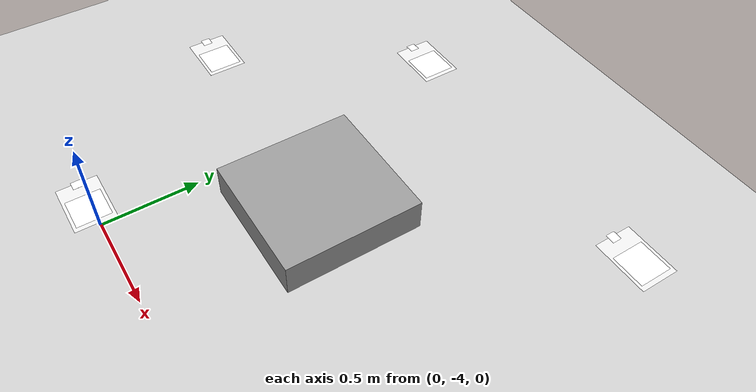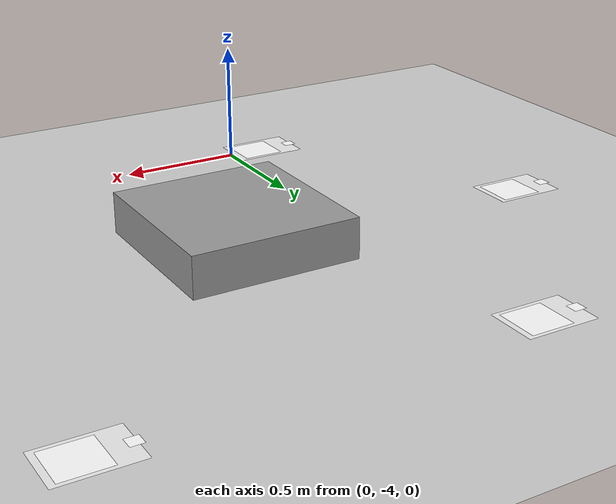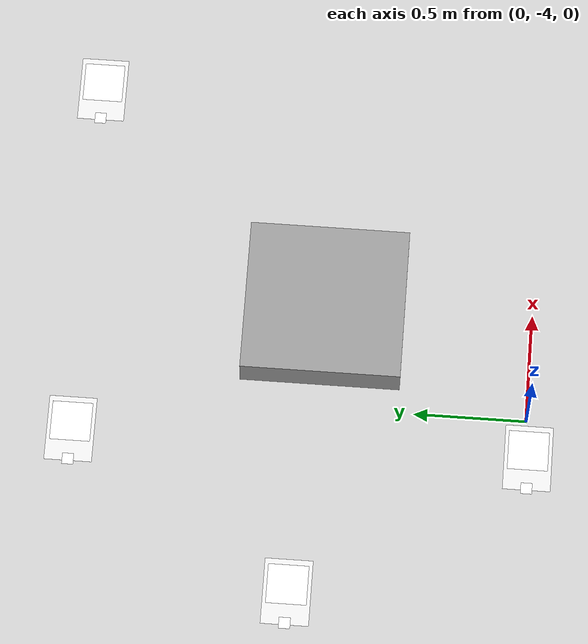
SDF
<sdf version="1.7">
 <world name="default">
  <model name="ground_plane">
   <static>1</static>
   <link name="link">
    <collision name="collision">
     <geometry><plane><normal>0 0 1</normal><size>100 100</size></plane></geometry>
     <surface>
      <contact><collide_bitmask>65535</collide_bitmask></contact>
      <friction><ode><mu>100</mu><mu2>50</mu2></ode></friction>
     </surface>
    </collision>
    <visual name="visual">
     <cast_shadows>0</cast_shadows>
     <geometry><plane><normal>0 0 1</normal><size>100 100</size></plane></geometry>
     <material>
      <script><uri>file://media/materials/scripts/gazebo.material</uri><name>Gazebo/Grey</name></script>
     </material>
    </visual>
   </link>
  </model>
  <model name="unit_box">
   <pose>0.453319 -3.07831 0.08405 0 -0 0</pose>
   <link name="link">
    <inertial>
     <mass>1</mass>
     <inertia>
      <ixx>0.166667</ixx>
      <ixy>0</ixy>
      <ixz>0</ixz>
      <iyy>0.166667</iyy>
      <iyz>0</iyz>
      <izz>0.166667</izz>
     </inertia>
    </inertial>
    <collision name="collision"><geometry><box><size>0.683214 0.706028 0.1681</size></box></geometry></collision>
    <visual name="visual">
     <geometry><box><size>0.683214 0.706028 0.1681</size></box></geometry>
     <material>
      <script><name>Gazebo/Grey</name><uri>file://media/materials/scripts/gazebo.material</uri></script>
     </material>
    </visual>
   </link>
  </model>
  <model name="aruco_visual_marker_0_pad">
   <frame name="aruco_visual_marker_0::__model__" attached_to="aruco_visual_marker_0::marker">
    <pose relative_to="__model__">0 0 0 0 -0 0</pose>
   </frame>
   <link name="aruco_visual_marker_0::marker">
    <pose relative_to="aruco_visual_marker_0::__model__">0 0 0 0 -0 0</pose>
    <visual name="visual">
     <geometry><box><size>0.1778 0.1778 1e-05</size></box></geometry>
     <material>
      <script>
       <uri>model://aruco_visual_marker_0/materials/scripts</uri>
       <uri>model://aruco_visual_marker_0/materials/textures</uri>
       <name>ArucoVisualMarker0/Marker</name>
      </script>
      <ambient>1 1 1 1</ambient>
      <diffuse>1 1 1 1</diffuse>
      <specular>0 0 0 1</specular>
      <emissive>1 1 1 0</emissive>
      <shader type="vertex"><normal_map>__default__</normal_map></shader>
     </material>
    </visual>
    <collision name="collision"><geometry><box><size>0.1778 0.1778 1e-05</size></box></geometry></collision>
   </link>
   <link name="aruco_visual_marker_0::marker_pad">
    <pose relative_to="aruco_visual_marker_0::marker">0 0 -1e-05 0 -0 0</pose>
    <visual name="visual">
     <geometry><box><size>0.1778 0.1778 1e-05</size></box></geometry>
     <material>
      <lighting>1</lighting>
      <script><uri>file://media/materials/scripts/gazebo.material</uri><name>Gazebo/White</name></script>
      <ambient>0.3 0.3 0.3 1</ambient>
      <diffuse>0.7 0.7 0.7 1</diffuse>
      <specular>0.01 0.01 0.01 1</specular>
      <emissive>1 1 1 0</emissive>
      <shader type="vertex"><normal_map>__default__</normal_map></shader>
     </material>
    </visual>
    <collision name="collision"><geometry><box><size>0.1778 0.1778 1e-05</size></box></geometry></collision>
   </link>
   <joint name="aruco_visual_marker_0::marker_JOINT_marker_pad" type="revolute">
    <parent>aruco_visual_marker_0::marker</parent>
    <child>aruco_visual_marker_0::marker_pad</child>
    <axis>
     <xyz>0 0 1</xyz>
     <limit><upper>0</upper><lower>0</lower></limit>
     <dynamics><spring_reference>0</spring_reference><spring_stiffness>0</spring_stiffness></dynamics>
    </axis>
   </joint>
   <static>1</static>
   <link name="marker_pad_large">
    <pose relative_to="aruco_visual_marker_0::marker">-0.035 0 -1e-05 0 -0 0</pose>
    <visual name="visual">
     <geometry><box><size>0.297 0.21 1e-05</size></box></geometry>
     <material>
      <lighting>1</lighting>
      <script><uri>file://media/materials/scripts/gazebo.material</uri><name>Gazebo/White</name></script>
      <ambient>0.3 0.3 0.3 1</ambient>
      <diffuse>0.7 0.7 0.7 1</diffuse>
      <specular>0.01 0.01 0.01 1</specular>
      <emissive>1 1 1 0</emissive>
      <shader type="vertex"><normal_map>__default__</normal_map></shader>
     </material>
    </visual>
    <collision name="collision">
     <geometry><box><size>0.297 0.21 1e-05</size></box></geometry>
     <surface>
      <friction>
       <ode><mu>1</mu><mu2>1</mu2><fdir1>0 0 0</fdir1><slip1>0</slip1><slip2>0</slip2></ode>
       <torsional>
        <coefficient>1</coefficient>
        <patch_radius>0</patch_radius>
        <surface_radius>0</surface_radius>
        <use_patch_radius>1</use_patch_radius>
        <ode><slip>0</slip></ode>
       </torsional>
      </friction>
      <bounce><restitution_coefficient>0</restitution_coefficient><threshold>1e+06</threshold></bounce>
      <contact>
       <collide_without_contact>0</collide_without_contact>
       <collide_without_contact_bitmask>1</collide_without_contact_bitmask>
       <collide_bitmask>1</collide_bitmask>
       <ode>
        <soft_cfm>0</soft_cfm>
        <soft_erp>0.2</soft_erp>
        <kp>1e+13</kp>
        <kd>1</kd>
        <max_vel>0.01</max_vel>
        <min_depth>0</min_depth>
       </ode>
       <bullet>
        <split_impulse>1</split_impulse>
        <split_impulse_penetration_threshold>-0.01</split_impulse_penetration_threshold>
        <soft_cfm>0</soft_cfm>
        <soft_erp>0.2</soft_erp>
        <kp>1e+13</kp>
        <kd>1</kd>
       </bullet>
      </contact>
     </surface>
    </collision>
   </link>
   <link name="marker_num">
    <pose relative_to="marker_pad_large">-0.14 0 1e-05 0 -0 0</pose>
    <visual name="visual">
     <geometry><box><size>0.05 0.05 1e-05</size></box></geometry>
     <material>
      <script>
       <uri>model://aruco_visual_marker_0_pad/materials/scripts</uri>
       <uri>model://aruco_visual_marker_0_pad/materials/textures</uri>
       <name>ArucoVisualMarker0/Num</name>
      </script>
      <ambient>1 1 1 1</ambient>
      <diffuse>1 1 1 1</diffuse>
      <specular>0 0 0 1</specular>
      <emissive>1 1 1 0</emissive>
      <shader type="vertex"><normal_map>__default__</normal_map></shader>
     </material>
    </visual>
    <collision name="collision">
     <geometry><box><size>0.05 0.05 1e-05</size></box></geometry>
     <surface>
      <friction>
       <ode><mu>1</mu><mu2>1</mu2><fdir1>0 0 0</fdir1><slip1>0</slip1><slip2>0</slip2></ode>
       <torsional>
        <coefficient>1</coefficient>
        <patch_radius>0</patch_radius>
        <surface_radius>0</surface_radius>
        <use_patch_radius>1</use_patch_radius>
        <ode><slip>0</slip></ode>
       </torsional>
      </friction>
      <bounce><restitution_coefficient>0</restitution_coefficient><threshold>1e+06</threshold></bounce>
      <contact>
       <collide_without_contact>0</collide_without_contact>
       <collide_without_contact_bitmask>1</collide_without_contact_bitmask>
       <collide_bitmask>1</collide_bitmask>
       <ode>
        <soft_cfm>0</soft_cfm>
        <soft_erp>0.2</soft_erp>
        <kp>1e+13</kp>
        <kd>1</kd>
        <max_vel>0.01</max_vel>
        <min_depth>0</min_depth>
       </ode>
       <bullet>
        <split_impulse>1</split_impulse>
        <split_impulse_penetration_threshold>-0.01</split_impulse_penetration_threshold>
        <soft_cfm>0</soft_cfm>
        <soft_erp>0.2</soft_erp>
        <kp>1e+13</kp>
        <kd>1</kd>
       </bullet>
      </contact>
     </surface>
    </collision>
   </link>
   <joint name="marker_JOINT_marker_pad_large" type="revolute">
    <parent>aruco_visual_marker_0::marker</parent>
    <child>marker_pad_large</child>
    <axis>
     <xyz>0 0 1</xyz>
     <limit><upper>0</upper><lower>0</lower></limit>
     <dynamics><spring_reference>0</spring_reference><spring_stiffness>0</spring_stiffness></dynamics>
    </axis>
   </joint>
   <joint name="pad_large_JOINT_marker_num" type="revolute">
    <parent>marker_pad_large</parent>
    <child>marker_num</child>
    <axis>
     <xyz>0 0 1</xyz>
     <limit><upper>0</upper><lower>0</lower></limit>
     <dynamics><spring_reference>0</spring_reference><spring_stiffness>0</spring_stiffness></dynamics>
    </axis>
   </joint>
   <static>1</static>
   <pose>-0.137277 -1.99878 0 0 -0 0</pose>
  </model>
  <model name="aruco_visual_marker_1_pad">
   <frame name="aruco_visual_marker_1::__model__" attached_to="aruco_visual_marker_1::marker">
    <pose relative_to="__model__">0 0 0 0 -0 0</pose>
   </frame>
   <link name="aruco_visual_marker_1::marker">
    <pose relative_to="aruco_visual_marker_1::__model__">0 0 0 0 -0 0</pose>
    <visual name="visual">
     <geometry><box><size>0.1778 0.1778 1e-05</size></box></geometry>
     <material>
      <script>
       <uri>model://aruco_visual_marker_1/materials/scripts</uri>
       <uri>model://aruco_visual_marker_1/materials/textures</uri>
       <name>ArucoVisualMarker1/Marker</name>
      </script>
      <ambient>1 1 1 1</ambient>
      <diffuse>1 1 1 1</diffuse>
      <specular>0 0 0 1</specular>
      <emissive>1 1 1 0</emissive>
      <shader type="vertex"><normal_map>__default__</normal_map></shader>
     </material>
    </visual>
    <collision name="collision"><geometry><box><size>0.1778 0.1778 1e-05</size></box></geometry></collision>
   </link>
   <link name="aruco_visual_marker_1::marker_pad">
    <pose relative_to="aruco_visual_marker_1::marker">0 0 -1e-05 0 -0 0</pose>
    <visual name="visual">
     <geometry><box><size>0.1778 0.1778 1e-05</size></box></geometry>
     <material>
      <lighting>1</lighting>
      <script><uri>file://media/materials/scripts/gazebo.material</uri><name>Gazebo/White</name></script>
      <ambient>0.3 0.3 0.3 1</ambient>
      <diffuse>0.7 0.7 0.7 1</diffuse>
      <specular>0.01 0.01 0.01 1</specular>
      <emissive>1 1 1 0</emissive>
      <shader type="vertex"><normal_map>__default__</normal_map></shader>
     </material>
    </visual>
    <collision name="collision"><geometry><box><size>0.1778 0.1778 1e-05</size></box></geometry></collision>
   </link>
   <joint name="aruco_visual_marker_1::marker_JOINT_marker_pad" type="revolute">
    <parent>aruco_visual_marker_1::marker</parent>
    <child>aruco_visual_marker_1::marker_pad</child>
    <axis>
     <xyz>0 0 1</xyz>
     <limit><upper>0</upper><lower>0</lower></limit>
     <dynamics><spring_reference>0</spring_reference><spring_stiffness>0</spring_stiffness></dynamics>
    </axis>
   </joint>
   <static>1</static>
   <link name="marker_pad_large">
    <pose relative_to="aruco_visual_marker_1::marker">-0.035 0 -1e-05 0 -0 0</pose>
    <visual name="visual">
     <geometry><box><size>0.297 0.21 1e-05</size></box></geometry>
     <material>
      <lighting>1</lighting>
      <script><uri>file://media/materials/scripts/gazebo.material</uri><name>Gazebo/White</name></script>
      <ambient>0.3 0.3 0.3 1</ambient>
      <diffuse>0.7 0.7 0.7 1</diffuse>
      <specular>0.01 0.01 0.01 1</specular>
      <emissive>1 1 1 0</emissive>
      <shader type="vertex"><normal_map>__default__</normal_map></shader>
     </material>
    </visual>
    <collision name="collision">
     <geometry><box><size>0.297 0.21 1e-05</size></box></geometry>
     <surface>
      <friction>
       <ode><mu>1</mu><mu2>1</mu2><fdir1>0 0 0</fdir1><slip1>0</slip1><slip2>0</slip2></ode>
       <torsional>
        <coefficient>1</coefficient>
        <patch_radius>0</patch_radius>
        <surface_radius>0</surface_radius>
        <use_patch_radius>1</use_patch_radius>
        <ode><slip>0</slip></ode>
       </torsional>
      </friction>
      <bounce><restitution_coefficient>0</restitution_coefficient><threshold>1e+06</threshold></bounce>
      <contact>
       <collide_without_contact>0</collide_without_contact>
       <collide_without_contact_bitmask>1</collide_without_contact_bitmask>
       <collide_bitmask>1</collide_bitmask>
       <ode>
        <soft_cfm>0</soft_cfm>
        <soft_erp>0.2</soft_erp>
        <kp>1e+13</kp>
        <kd>1</kd>
        <max_vel>0.01</max_vel>
        <min_depth>0</min_depth>
       </ode>
       <bullet>
        <split_impulse>1</split_impulse>
        <split_impulse_penetration_threshold>-0.01</split_impulse_penetration_threshold>
        <soft_cfm>0</soft_cfm>
        <soft_erp>0.2</soft_erp>
        <kp>1e+13</kp>
        <kd>1</kd>
       </bullet>
      </contact>
     </surface>
    </collision>
   </link>
   <link name="marker_num">
    <pose relative_to="marker_pad_large">-0.14 0 1e-05 0 -0 0</pose>
    <visual name="visual">
     <geometry><box><size>0.05 0.05 1e-05</size></box></geometry>
     <material>
      <script>
       <uri>model://aruco_visual_marker_1_pad/materials/scripts</uri>
       <uri>model://aruco_visual_marker_1_pad/materials/textures</uri>
       <name>ArucoVisualMarker1/Num</name>
      </script>
      <ambient>1 1 1 1</ambient>
      <diffuse>1 1 1 1</diffuse>
      <specular>0 0 0 1</specular>
      <emissive>1 1 1 0</emissive>
      <shader type="vertex"><normal_map>__default__</normal_map></shader>
     </material>
    </visual>
    <collision name="collision">
     <geometry><box><size>0.05 0.05 1e-05</size></box></geometry>
     <surface>
      <friction>
       <ode><mu>1</mu><mu2>1</mu2><fdir1>0 0 0</fdir1><slip1>0</slip1><slip2>0</slip2></ode>
       <torsional>
        <coefficient>1</coefficient>
        <patch_radius>0</patch_radius>
        <surface_radius>0</surface_radius>
        <use_patch_radius>1</use_patch_radius>
        <ode><slip>0</slip></ode>
       </torsional>
      </friction>
      <bounce><restitution_coefficient>0</restitution_coefficient><threshold>1e+06</threshold></bounce>
      <contact>
       <collide_without_contact>0</collide_without_contact>
       <collide_without_contact_bitmask>1</collide_without_contact_bitmask>
       <collide_bitmask>1</collide_bitmask>
       <ode>
        <soft_cfm>0</soft_cfm>
        <soft_erp>0.2</soft_erp>
        <kp>1e+13</kp>
        <kd>1</kd>
        <max_vel>0.01</max_vel>
        <min_depth>0</min_depth>
       </ode>
       <bullet>
        <split_impulse>1</split_impulse>
        <split_impulse_penetration_threshold>-0.01</split_impulse_penetration_threshold>
        <soft_cfm>0</soft_cfm>
        <soft_erp>0.2</soft_erp>
        <kp>1e+13</kp>
        <kd>1</kd>
       </bullet>
      </contact>
     </surface>
    </collision>
   </link>
   <joint name="marker_JOINT_marker_pad_large" type="revolute">
    <parent>aruco_visual_marker_1::marker</parent>
    <child>marker_pad_large</child>
    <axis>
     <xyz>0 0 1</xyz>
     <limit><upper>0</upper><lower>0</lower></limit>
     <dynamics><spring_reference>0</spring_reference><spring_stiffness>0</spring_stiffness></dynamics>
    </axis>
   </joint>
   <joint name="pad_large_JOINT_marker_num" type="revolute">
    <parent>marker_pad_large</parent>
    <child>marker_num</child>
    <axis>
     <xyz>0 0 1</xyz>
     <limit><upper>0</upper><lower>0</lower></limit>
     <dynamics><spring_reference>0</spring_reference><spring_stiffness>0</spring_stiffness></dynamics>
    </axis>
   </joint>
   <static>1</static>
   <pose>1.49788 -1.99798 0 0 -0 0</pose>
  </model>
  <model name="aruco_visual_marker_6_pad">
   <frame name="aruco_visual_marker_6::__model__" attached_to="aruco_visual_marker_6::marker">
    <pose relative_to="__model__">0 0 0 0 -0 0</pose>
   </frame>
   <link name="aruco_visual_marker_6::marker">
    <pose relative_to="aruco_visual_marker_6::__model__">0 0 0 0 -0 0</pose>
    <visual name="visual">
     <geometry><box><size>0.1778 0.1778 1e-05</size></box></geometry>
     <material>
      <script>
       <uri>model://aruco_visual_marker_6/materials/scripts</uri>
       <uri>model://aruco_visual_marker_6/materials/textures</uri>
       <name>ArucoVisualMarker6/Marker</name>
      </script>
      <ambient>1 1 1 1</ambient>
      <diffuse>1 1 1 1</diffuse>
      <specular>0 0 0 1</specular>
      <emissive>1 1 1 0</emissive>
      <shader type="vertex"><normal_map>__default__</normal_map></shader>
     </material>
    </visual>
    <collision name="collision"><geometry><box><size>0.1778 0.1778 1e-05</size></box></geometry></collision>
   </link>
   <link name="aruco_visual_marker_6::marker_pad">
    <pose relative_to="aruco_visual_marker_6::marker">0 0 -1e-05 0 -0 0</pose>
    <visual name="visual">
     <geometry><box><size>0.1778 0.1778 1e-05</size></box></geometry>
     <material>
      <lighting>1</lighting>
      <script><uri>file://media/materials/scripts/gazebo.material</uri><name>Gazebo/White</name></script>
      <ambient>0.3 0.3 0.3 1</ambient>
      <diffuse>0.7 0.7 0.7 1</diffuse>
      <specular>0.01 0.01 0.01 1</specular>
      <emissive>1 1 1 0</emissive>
      <shader type="vertex"><normal_map>__default__</normal_map></shader>
     </material>
    </visual>
    <collision name="collision"><geometry><box><size>0.1778 0.1778 1e-05</size></box></geometry></collision>
   </link>
   <joint name="aruco_visual_marker_6::marker_JOINT_marker_pad" type="revolute">
    <parent>aruco_visual_marker_6::marker</parent>
    <child>aruco_visual_marker_6::marker_pad</child>
    <axis>
     <xyz>0 0 1</xyz>
     <limit><upper>0</upper><lower>0</lower></limit>
     <dynamics><spring_reference>0</spring_reference><spring_stiffness>0</spring_stiffness></dynamics>
    </axis>
   </joint>
   <static>1</static>
   <link name="marker_pad_large">
    <pose relative_to="aruco_visual_marker_6::marker">-0.035 0 -1e-05 0 -0 0</pose>
    <visual name="visual">
     <geometry><box><size>0.297 0.21 1e-05</size></box></geometry>
     <material>
      <lighting>1</lighting>
      <script><uri>file://media/materials/scripts/gazebo.material</uri><name>Gazebo/White</name></script>
      <ambient>0.3 0.3 0.3 1</ambient>
      <diffuse>0.7 0.7 0.7 1</diffuse>
      <specular>0.01 0.01 0.01 1</specular>
      <emissive>1 1 1 0</emissive>
      <shader type="vertex"><normal_map>__default__</normal_map></shader>
     </material>
    </visual>
    <collision name="collision">
     <geometry><box><size>0.297 0.21 1e-05</size></box></geometry>
     <surface>
      <friction>
       <ode><mu>1</mu><mu2>1</mu2><fdir1>0 0 0</fdir1><slip1>0</slip1><slip2>0</slip2></ode>
       <torsional>
        <coefficient>1</coefficient>
        <patch_radius>0</patch_radius>
        <surface_radius>0</surface_radius>
        <use_patch_radius>1</use_patch_radius>
        <ode><slip>0</slip></ode>
       </torsional>
      </friction>
      <bounce><restitution_coefficient>0</restitution_coefficient><threshold>1e+06</threshold></bounce>
      <contact>
       <collide_without_contact>0</collide_without_contact>
       <collide_without_contact_bitmask>1</collide_without_contact_bitmask>
       <collide_bitmask>1</collide_bitmask>
       <ode>
        <soft_cfm>0</soft_cfm>
        <soft_erp>0.2</soft_erp>
        <kp>1e+13</kp>
        <kd>1</kd>
        <max_vel>0.01</max_vel>
        <min_depth>0</min_depth>
       </ode>
       <bullet>
        <split_impulse>1</split_impulse>
        <split_impulse_penetration_threshold>-0.01</split_impulse_penetration_threshold>
        <soft_cfm>0</soft_cfm>
        <soft_erp>0.2</soft_erp>
        <kp>1e+13</kp>
        <kd>1</kd>
       </bullet>
      </contact>
     </surface>
    </collision>
   </link>
   <link name="marker_num">
    <pose relative_to="marker_pad_large">-0.14 0 1e-05 0 -0 0</pose>
    <visual name="visual">
     <geometry><box><size>0.05 0.05 1e-05</size></box></geometry>
     <material>
      <script>
       <uri>model://aruco_visual_marker_6_pad/materials/scripts</uri>
       <uri>model://aruco_visual_marker_6_pad/materials/textures</uri>
       <name>ArucoVisualMarker6/Num</name>
      </script>
      <ambient>1 1 1 1</ambient>
      <diffuse>1 1 1 1</diffuse>
      <specular>0 0 0 1</specular>
      <emissive>1 1 1 0</emissive>
      <shader type="vertex"><normal_map>__default__</normal_map></shader>
     </material>
    </visual>
    <collision name="collision">
     <geometry><box><size>0.05 0.05 1e-05</size></box></geometry>
     <surface>
      <friction>
       <ode><mu>1</mu><mu2>1</mu2><fdir1>0 0 0</fdir1><slip1>0</slip1><slip2>0</slip2></ode>
       <torsional>
        <coefficient>1</coefficient>
        <patch_radius>0</patch_radius>
        <surface_radius>0</surface_radius>
        <use_patch_radius>1</use_patch_radius>
        <ode><slip>0</slip></ode>
       </torsional>
      </friction>
      <bounce><restitution_coefficient>0</restitution_coefficient><threshold>1e+06</threshold></bounce>
      <contact>
       <collide_without_contact>0</collide_without_contact>
       <collide_without_contact_bitmask>1</collide_without_contact_bitmask>
       <collide_bitmask>1</collide_bitmask>
       <ode>
        <soft_cfm>0</soft_cfm>
        <soft_erp>0.2</soft_erp>
        <kp>1e+13</kp>
        <kd>1</kd>
        <max_vel>0.01</max_vel>
        <min_depth>0</min_depth>
       </ode>
       <bullet>
        <split_impulse>1</split_impulse>
        <split_impulse_penetration_threshold>-0.01</split_impulse_penetration_threshold>
        <soft_cfm>0</soft_cfm>
        <soft_erp>0.2</soft_erp>
        <kp>1e+13</kp>
        <kd>1</kd>
       </bullet>
      </contact>
     </surface>
    </collision>
   </link>
   <joint name="marker_JOINT_marker_pad_large" type="revolute">
    <parent>aruco_visual_marker_6::marker</parent>
    <child>marker_pad_large</child>
    <axis>
     <xyz>0 0 1</xyz>
     <limit><upper>0</upper><lower>0</lower></limit>
     <dynamics><spring_reference>0</spring_reference><spring_stiffness>0</spring_stiffness></dynamics>
    </axis>
   </joint>
   <joint name="pad_large_JOINT_marker_num" type="revolute">
    <parent>marker_pad_large</parent>
    <child>marker_num</child>
    <axis>
     <xyz>0 0 1</xyz>
     <limit><upper>0</upper><lower>0</lower></limit>
     <dynamics><spring_reference>0</spring_reference><spring_stiffness>0</spring_stiffness></dynamics>
    </axis>
   </joint>
   <static>1</static>
   <pose>-0.130906 -4.0149 0 0 -0 0</pose>
  </model>
  <model name="aruco_visual_marker_7_pad">
   <frame name="aruco_visual_marker_7::__model__" attached_to="aruco_visual_marker_7::marker">
    <pose relative_to="__model__">0 0 0 0 -0 0</pose>
   </frame>
   <link name="aruco_visual_marker_7::marker">
    <pose relative_to="aruco_visual_marker_7::__model__">0 0 0 0 -0 0</pose>
    <visual name="visual">
     <geometry><box><size>0.1778 0.1778 1e-05</size></box></geometry>
     <material>
      <script>
       <uri>model://aruco_visual_marker_7/materials/scripts</uri>
       <uri>model://aruco_visual_marker_7/materials/textures</uri>
       <name>ArucoVisualMarker7/Marker</name>
      </script>
      <ambient>1 1 1 1</ambient>
      <diffuse>1 1 1 1</diffuse>
      <specular>0 0 0 1</specular>
      <emissive>1 1 1 0</emissive>
      <shader type="vertex"><normal_map>__default__</normal_map></shader>
     </material>
    </visual>
    <collision name="collision"><geometry><box><size>0.1778 0.1778 1e-05</size></box></geometry></collision>
   </link>
   <link name="aruco_visual_marker_7::marker_pad">
    <pose relative_to="aruco_visual_marker_7::marker">0 0 -1e-05 0 -0 0</pose>
    <visual name="visual">
     <geometry><box><size>0.1778 0.1778 1e-05</size></box></geometry>
     <material>
      <lighting>1</lighting>
      <script><uri>file://media/materials/scripts/gazebo.material</uri><name>Gazebo/White</name></script>
      <ambient>0.3 0.3 0.3 1</ambient>
      <diffuse>0.7 0.7 0.7 1</diffuse>
      <specular>0.01 0.01 0.01 1</specular>
      <emissive>1 1 1 0</emissive>
      <shader type="vertex"><normal_map>__default__</normal_map></shader>
     </material>
    </visual>
    <collision name="collision"><geometry><box><size>0.1778 0.1778 1e-05</size></box></geometry></collision>
   </link>
   <joint name="aruco_visual_marker_7::marker_JOINT_marker_pad" type="revolute">
    <parent>aruco_visual_marker_7::marker</parent>
    <child>aruco_visual_marker_7::marker_pad</child>
    <axis>
     <xyz>0 0 1</xyz>
     <limit><upper>0</upper><lower>0</lower></limit>
     <dynamics><spring_reference>0</spring_reference><spring_stiffness>0</spring_stiffness></dynamics>
    </axis>
   </joint>
   <static>1</static>
   <link name="marker_pad_large">
    <pose relative_to="aruco_visual_marker_7::marker">-0.035 0 -1e-05 0 -0 0</pose>
    <visual name="visual">
     <geometry><box><size>0.297 0.21 1e-05</size></box></geometry>
     <material>
      <lighting>1</lighting>
      <script><uri>file://media/materials/scripts/gazebo.material</uri><name>Gazebo/White</name></script>
      <ambient>0.3 0.3 0.3 1</ambient>
      <diffuse>0.7 0.7 0.7 1</diffuse>
      <specular>0.01 0.01 0.01 1</specular>
      <emissive>1 1 1 0</emissive>
      <shader type="vertex"><normal_map>__default__</normal_map></shader>
     </material>
    </visual>
    <collision name="collision">
     <geometry><box><size>0.297 0.21 1e-05</size></box></geometry>
     <surface>
      <friction>
       <ode><mu>1</mu><mu2>1</mu2><fdir1>0 0 0</fdir1><slip1>0</slip1><slip2>0</slip2></ode>
       <torsional>
        <coefficient>1</coefficient>
        <patch_radius>0</patch_radius>
        <surface_radius>0</surface_radius>
        <use_patch_radius>1</use_patch_radius>
        <ode><slip>0</slip></ode>
       </torsional>
      </friction>
      <bounce><restitution_coefficient>0</restitution_coefficient><threshold>1e+06</threshold></bounce>
      <contact>
       <collide_without_contact>0</collide_without_contact>
       <collide_without_contact_bitmask>1</collide_without_contact_bitmask>
       <collide_bitmask>1</collide_bitmask>
       <ode>
        <soft_cfm>0</soft_cfm>
        <soft_erp>0.2</soft_erp>
        <kp>1e+13</kp>
        <kd>1</kd>
        <max_vel>0.01</max_vel>
        <min_depth>0</min_depth>
       </ode>
       <bullet>
        <split_impulse>1</split_impulse>
        <split_impulse_penetration_threshold>-0.01</split_impulse_penetration_threshold>
        <soft_cfm>0</soft_cfm>
        <soft_erp>0.2</soft_erp>
        <kp>1e+13</kp>
        <kd>1</kd>
       </bullet>
      </contact>
     </surface>
    </collision>
   </link>
   <link name="marker_num">
    <pose relative_to="marker_pad_large">-0.14 0 1e-05 0 -0 0</pose>
    <visual name="visual">
     <geometry><box><size>0.05 0.05 1e-05</size></box></geometry>
     <material>
      <script>
       <uri>model://aruco_visual_marker_7_pad/materials/scripts</uri>
       <uri>model://aruco_visual_marker_7_pad/materials/textures</uri>
       <name>ArucoVisualMarker7/Num</name>
      </script>
      <ambient>1 1 1 1</ambient>
      <diffuse>1 1 1 1</diffuse>
      <specular>0 0 0 1</specular>
      <emissive>1 1 1 0</emissive>
      <shader type="vertex"><normal_map>__default__</normal_map></shader>
     </material>
    </visual>
    <collision name="collision">
     <geometry><box><size>0.05 0.05 1e-05</size></box></geometry>
     <surface>
      <friction>
       <ode><mu>1</mu><mu2>1</mu2><fdir1>0 0 0</fdir1><slip1>0</slip1><slip2>0</slip2></ode>
       <torsional>
        <coefficient>1</coefficient>
        <patch_radius>0</patch_radius>
        <surface_radius>0</surface_radius>
        <use_patch_radius>1</use_patch_radius>
        <ode><slip>0</slip></ode>
       </torsional>
      </friction>
      <bounce><restitution_coefficient>0</restitution_coefficient><threshold>1e+06</threshold></bounce>
      <contact>
       <collide_without_contact>0</collide_without_contact>
       <collide_without_contact_bitmask>1</collide_without_contact_bitmask>
       <collide_bitmask>1</collide_bitmask>
       <ode>
        <soft_cfm>0</soft_cfm>
        <soft_erp>0.2</soft_erp>
        <kp>1e+13</kp>
        <kd>1</kd>
        <max_vel>0.01</max_vel>
        <min_depth>0</min_depth>
       </ode>
       <bullet>
        <split_impulse>1</split_impulse>
        <split_impulse_penetration_threshold>-0.01</split_impulse_penetration_threshold>
        <soft_cfm>0</soft_cfm>
        <soft_erp>0.2</soft_erp>
        <kp>1e+13</kp>
        <kd>1</kd>
       </bullet>
      </contact>
     </surface>
    </collision>
   </link>
   <joint name="marker_JOINT_marker_pad_large" type="revolute">
    <parent>aruco_visual_marker_7::marker</parent>
    <child>marker_pad_large</child>
    <axis>
     <xyz>0 0 1</xyz>
     <limit><upper>0</upper><lower>0</lower></limit>
     <dynamics><spring_reference>0</spring_reference><spring_stiffness>0</spring_stiffness></dynamics>
    </axis>
   </joint>
   <joint name="pad_large_JOINT_marker_num" type="revolute">
    <parent>marker_pad_large</parent>
    <child>marker_num</child>
    <axis>
     <xyz>0 0 1</xyz>
     <limit><upper>0</upper><lower>0</lower></limit>
     <dynamics><spring_reference>0</spring_reference><spring_stiffness>0</spring_stiffness></dynamics>
    </axis>
   </joint>
   <static>1</static>
   <pose>-0.819347 -3.003 0 0 -0 0</pose>
  </model>
 </world>
</sdf>
